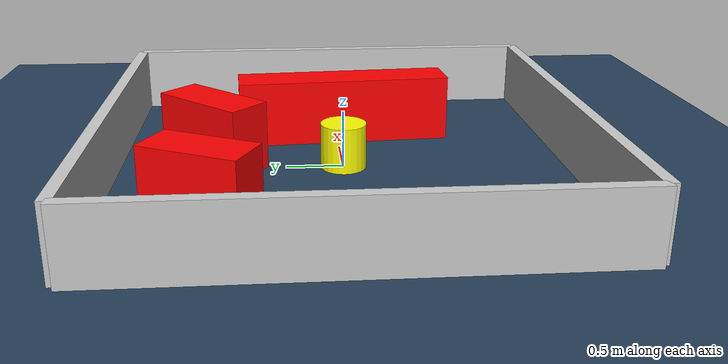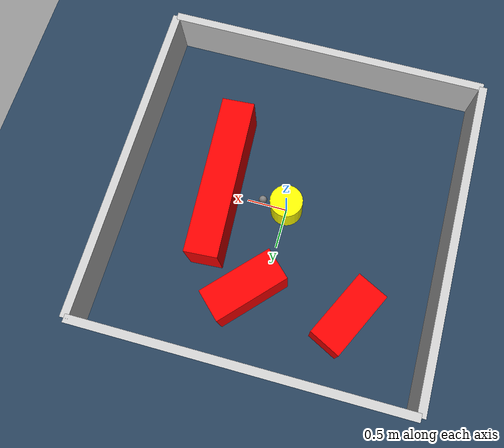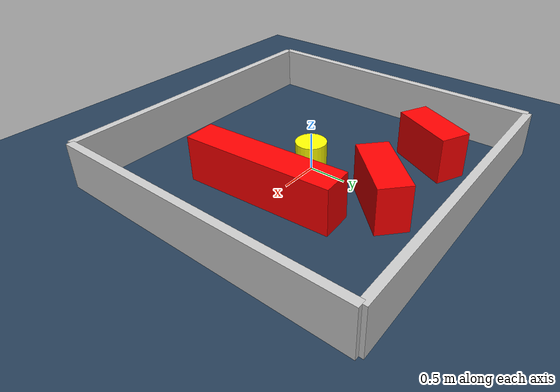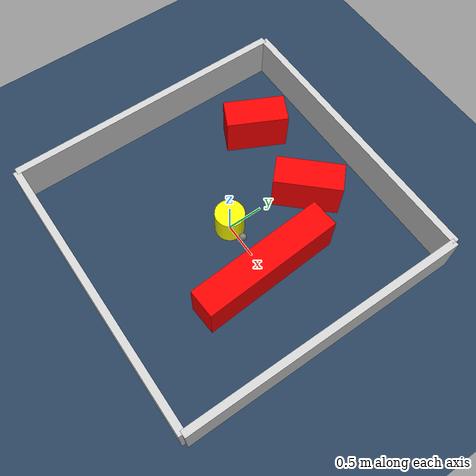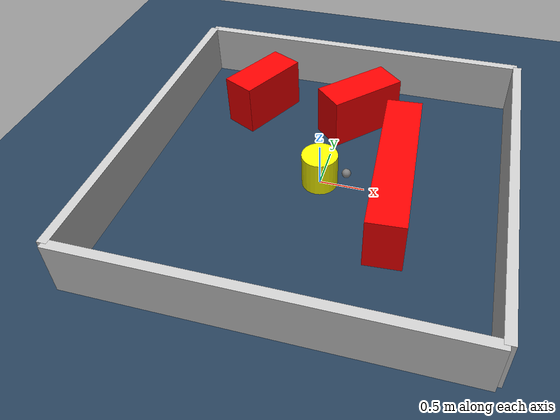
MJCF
<?xml version="1.0" ?>
<mujoco model="generated_environment">
  <option timestep="0.01" integrator="RK4" cone="elliptic"/>
  <default>
    <geom density="1"/>
  </default>
  <asset>
    <texture builtin="gradient" height="3072" rgb1="0.3 0.5 0.7" rgb2="0 0 0" type="skybox" width="512"/>
    <texture builtin="checker" height="300" mark="edge" markrgb="0.8 0.8 0.8" name="groundplane" rgb1="0.2 0.3 0.4" rgb2="0.1 0.2 0.3" type="2d" width="300"/>
    <material name="groundplane" reflectance="0.2" texrepeat="5 5" texture="groundplane" texuniform="true"/>
    <material name="robot" rgba="0.0 1.0 0.0 1"/>
  </asset>
  <worldbody>
    <light dir="0 0 -1" directional="true" pos="0 0 1.5"/>
    <geom condim="4" friction="1.0 0.005 0.001" material="groundplane" name="floor" size="0 0 0.05" type="plane"/>
    <body name="walls">
      <geom name="wall_1" condim="4" pos="-2.0 0.0 0.3" rgba="0.800000011920929 0.800000011920929 0.800000011920929 1.0" size="0.05 2.0 0.3" type="box"/>
      <geom name="wall_2" condim="4" pos="2.0 0.0 0.3" rgba="0.800000011920929 0.800000011920929 0.800000011920929 1.0" size="0.05 2.0 0.3" type="box"/>
      <geom name="wall_3" condim="4" pos="0.0 -2.0 0.3" rgba="0.800000011920929 0.800000011920929 0.800000011920929 1.0" size="2.0 0.05 0.3" type="box"/>
      <geom name="wall_4" condim="4" pos="0.0 2.0 0.3" rgba="0.800000011920929 0.800000011920929 0.800000011920929 1.0" size="2.0 0.05 0.3" type="box"/>
    </body>
    <body name="robot">
      <joint name="joint_x" type="slide" pos="0 0 0" axis="1 0 0"/>
      <joint name="joint_y" type="slide" pos="0 0 0" axis="0 1 0"/>
      <geom name="robot" type="sphere" pos="0.3 0.0 0.2" size="0.05" mass="5." friction="1.0 0.005 0.0001" condim="4" rgba="0.5 0.5 0.5 1.0"/>
      <site name="sensor_ball"/>
    </body>
    <body name="obstacle_movable_1">
      <geom name="obstacle_movable_1" condim="4" pos="0.0 0.0 0.2" euler="0 0 0.0" friction="1.0 0.005 0.001" rgba="1.0 1.0 0.0 1.0" size="0.2 0.2 0.0" type="cylinder" mass="0.1"/>
      <joint type="free"/>
    </body>
    <body name="obstacle_2_static">
      <geom name="obstacle_2_static" condim="4" pos="0.19560536789599614 1.13259398595933 0.3" euler="0 0 226.65094999405173" friction="1.0 0.005 0.001" rgba="1 0 0 1" size="0.45904934468111425 0.2 0.3" type="box"/>
    </body>
    <body name="obstacle_3_static">
      <geom name="obstacle_3_static" condim="4" pos="-1.023506498703189 1.1454380322154514 0.3" euler="0 0 243.6543245377043" friction="1.0 0.005 0.001" rgba="1 0 0 1" size="0.4242634675331138 0.2 0.3" type="box"/>
    </body>
    <body name="obstacle_4_static">
      <geom name="obstacle_4_static" condim="4" pos="0.8259381241288619 -0.04794761630258715 0.3" euler="0 0 273.5449692139425" friction="1.0 0.005 0.001" rgba="1 0 0 1" size="0.9842345209542174 0.2 0.3" type="box"/>
    </body>
  </worldbody>
  <actuator>
    <motor name="actuator_x" joint="joint_x" gear="1" ctrlrange="-1 1"/>
    <motor name="actuator_y" joint="joint_y" gear="1" ctrlrange="-1 1"/>
  </actuator>
</mujoco>
